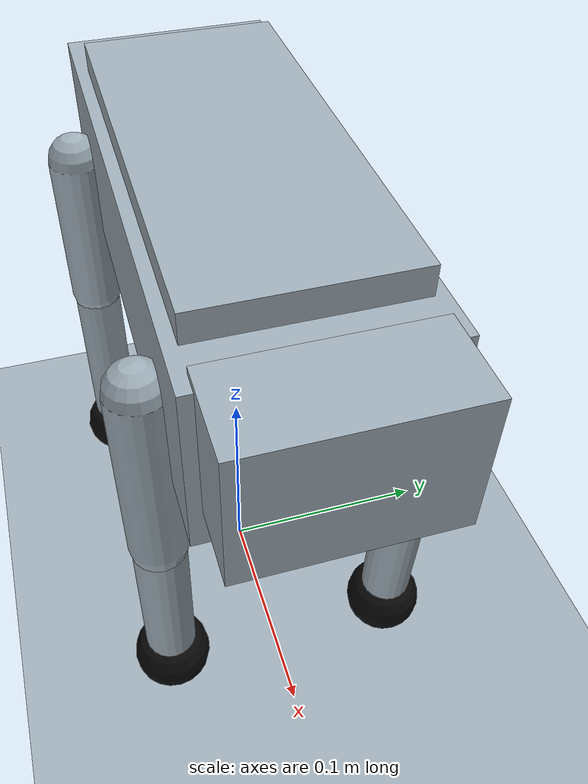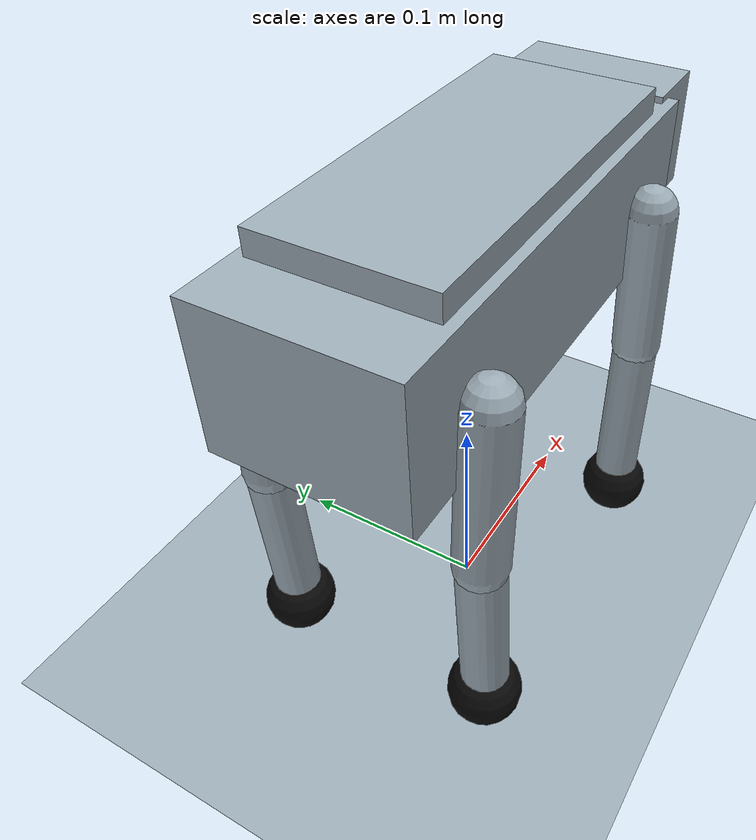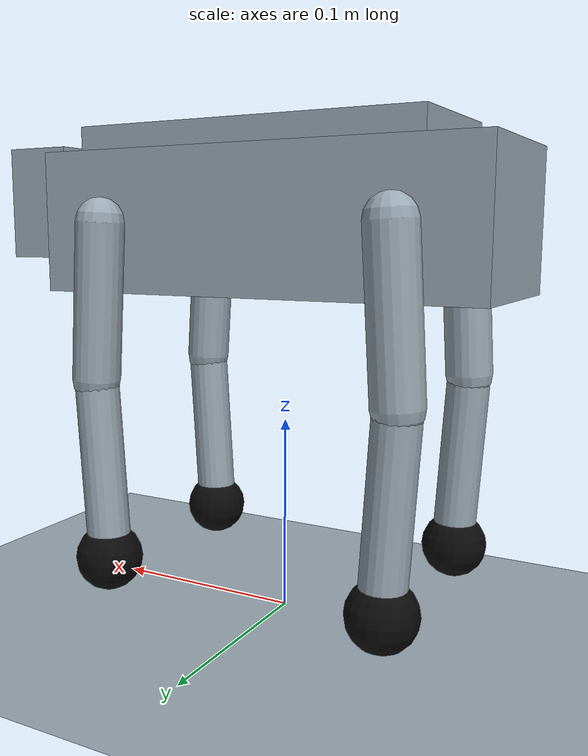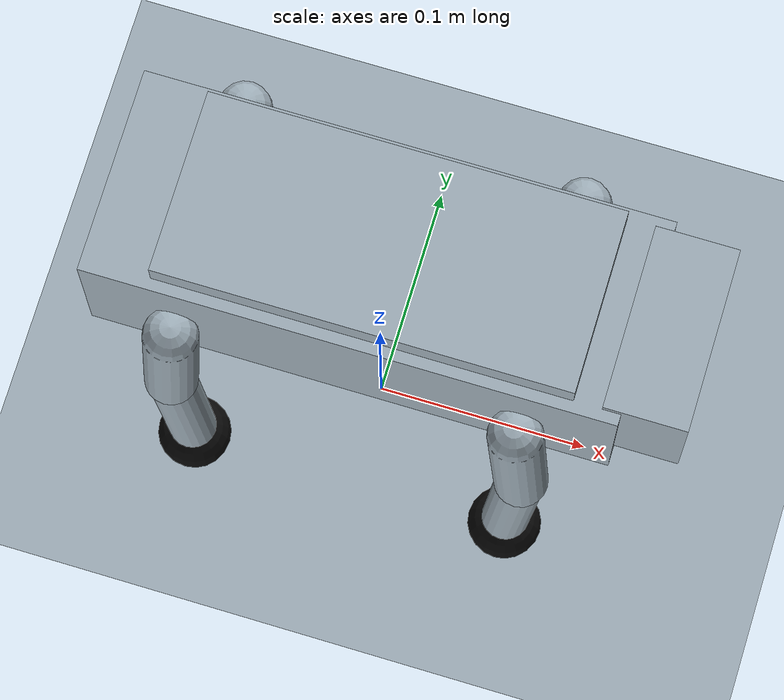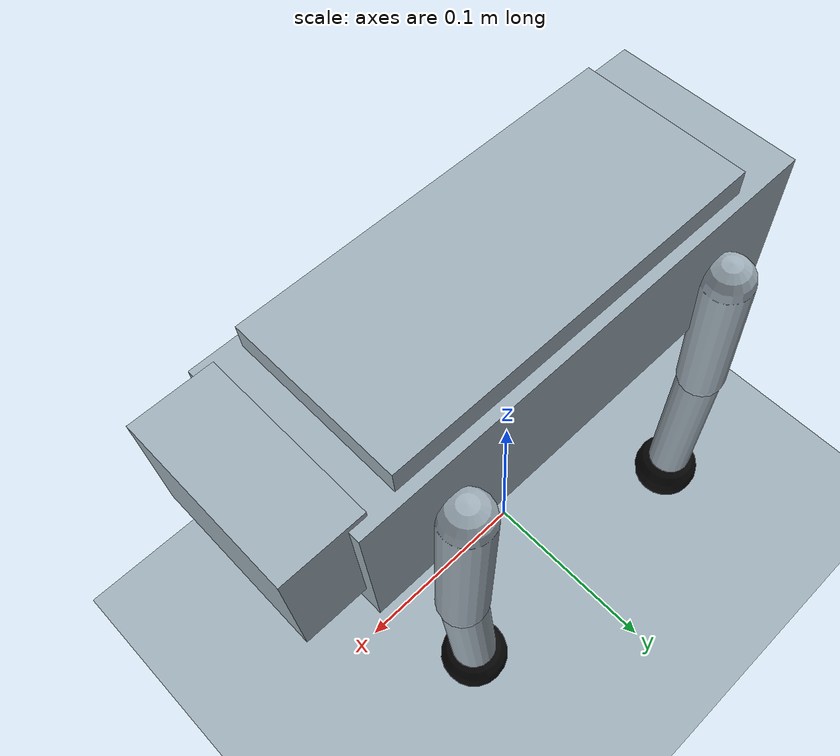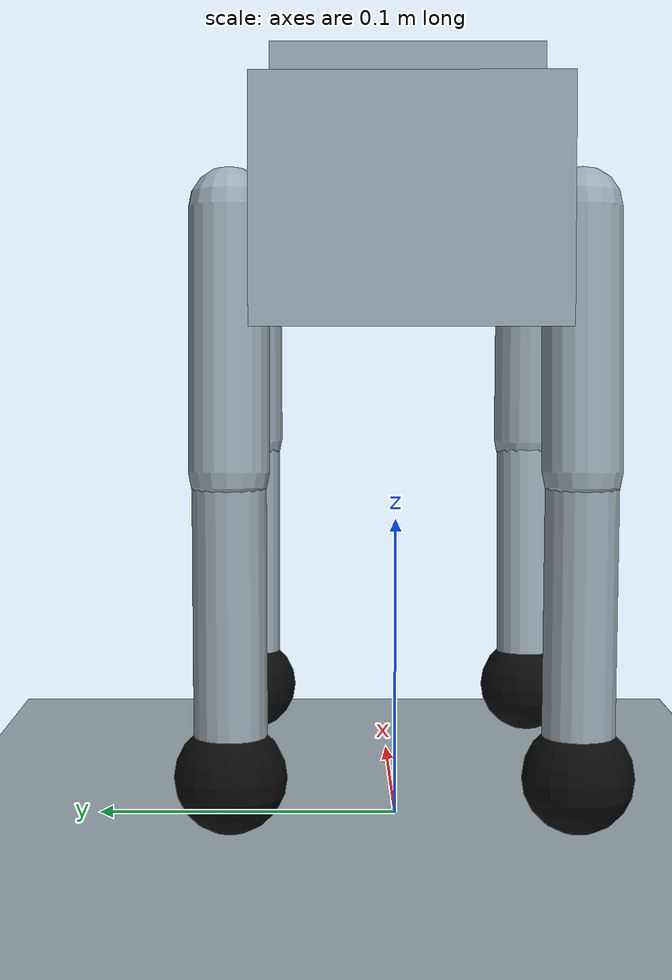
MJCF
<mujoco model="bittle_like_v0">
  <compiler angle="radian" coordinate="local"/>

  <option timestep="0.002" gravity="0 0 -9.81" integrator="RK4"/>

  <default>
    <joint damping="0.18" armature="0.008" limited="true"/>
    <geom friction="1.1 0.08 0.01" rgba="0.62 0.68 0.72 1"/>
    <position kp="12" ctrllimited="true" forcelimited="true" forcerange="-3.5 3.5"/>
  </default>

  <asset>
    <texture name="grid" type="2d" builtin="checker" width="512" height="512"
             rgb1="0.22 0.25 0.25" rgb2="0.36 0.4 0.4"/>
    <material name="grid" texture="grid" texrepeat="4 4"/>
    <material name="body_black" rgba="0.08 0.09 0.1 1"/>
    <material name="body_yellow" rgba="0.95 0.7 0.12 1"/>
    <material name="leg_dark" rgba="0.12 0.12 0.13 1"/>
  </asset>

  <worldbody>
    <light pos="0 0 2" dir="0 0 -1"/>
    <geom name="floor" type="plane" size="5 5 0.05" material="grid"/>

    <body name="torso" pos="0 0 0.20">
      <freejoint name="root"/>
      <geom name="torso_geom" type="box" size="0.115 0.045 0.035" mass="0.34" material="body_black"/>
      <geom name="top_shell" type="box" pos="0.005 0 0.035" size="0.09 0.04 0.012" mass="0.08" material="body_yellow"/>
      <geom name="front_face" type="box" pos="0.125 0 0.01" size="0.018 0.04 0.028" mass="0.03" material="body_yellow"/>

      <body name="front_left_thigh" pos="0.075 0.052 0">
        <joint name="front_left_hip" type="hinge" axis="0 1 0" range="-0.85 0.85"/>
        <geom type="capsule" fromto="0 0 0 0.005 0 -0.078" size="0.012" mass="0.026" material="leg_dark"/>
        <body name="front_left_calf" pos="0.005 0 -0.078">
          <joint name="front_left_knee" type="hinge" axis="0 1 0" range="-1.35 0.15"/>
          <geom type="capsule" fromto="0 0 0 -0.005 0 -0.082" size="0.011" mass="0.022" material="leg_dark"/>
          <geom name="front_left_foot" type="sphere" pos="-0.005 0 -0.092" size="0.017" mass="0.018" rgba="0.04 0.04 0.04 1"/>
        </body>
      </body>

      <body name="front_right_thigh" pos="0.075 -0.052 0">
        <joint name="front_right_hip" type="hinge" axis="0 1 0" range="-0.85 0.85"/>
        <geom type="capsule" fromto="0 0 0 0.005 0 -0.078" size="0.012" mass="0.026" material="leg_dark"/>
        <body name="front_right_calf" pos="0.005 0 -0.078">
          <joint name="front_right_knee" type="hinge" axis="0 1 0" range="-1.35 0.15"/>
          <geom type="capsule" fromto="0 0 0 -0.005 0 -0.082" size="0.011" mass="0.022" material="leg_dark"/>
          <geom name="front_right_foot" type="sphere" pos="-0.005 0 -0.092" size="0.017" mass="0.018" rgba="0.04 0.04 0.04 1"/>
        </body>
      </body>

      <body name="rear_left_thigh" pos="-0.075 0.052 0">
        <joint name="rear_left_hip" type="hinge" axis="0 1 0" range="-0.85 0.85"/>
        <geom type="capsule" fromto="0 0 0 -0.005 0 -0.078" size="0.012" mass="0.026" material="leg_dark"/>
        <body name="rear_left_calf" pos="-0.005 0 -0.078">
          <joint name="rear_left_knee" type="hinge" axis="0 1 0" range="-1.35 0.15"/>
          <geom type="capsule" fromto="0 0 0 0.005 0 -0.082" size="0.011" mass="0.022" material="leg_dark"/>
          <geom name="rear_left_foot" type="sphere" pos="0.005 0 -0.092" size="0.017" mass="0.018" rgba="0.04 0.04 0.04 1"/>
        </body>
      </body>

      <body name="rear_right_thigh" pos="-0.075 -0.052 0">
        <joint name="rear_right_hip" type="hinge" axis="0 1 0" range="-0.85 0.85"/>
        <geom type="capsule" fromto="0 0 0 -0.005 0 -0.078" size="0.012" mass="0.026" material="leg_dark"/>
        <body name="rear_right_calf" pos="-0.005 0 -0.078">
          <joint name="rear_right_knee" type="hinge" axis="0 1 0" range="-1.35 0.15"/>
          <geom type="capsule" fromto="0 0 0 0.005 0 -0.082" size="0.011" mass="0.022" material="leg_dark"/>
          <geom name="rear_right_foot" type="sphere" pos="0.005 0 -0.092" size="0.017" mass="0.018" rgba="0.04 0.04 0.04 1"/>
        </body>
      </body>
    </body>
  </worldbody>

  <actuator>
    <position name="front_left_hip_pos" joint="front_left_hip" ctrlrange="-0.75 0.75"/>
    <position name="front_left_knee_pos" joint="front_left_knee" ctrlrange="-1.25 0.05"/>
    <position name="front_right_hip_pos" joint="front_right_hip" ctrlrange="-0.75 0.75"/>
    <position name="front_right_knee_pos" joint="front_right_knee" ctrlrange="-1.25 0.05"/>
    <position name="rear_left_hip_pos" joint="rear_left_hip" ctrlrange="-0.75 0.75"/>
    <position name="rear_left_knee_pos" joint="rear_left_knee" ctrlrange="-1.25 0.05"/>
    <position name="rear_right_hip_pos" joint="rear_right_hip" ctrlrange="-0.75 0.75"/>
    <position name="rear_right_knee_pos" joint="rear_right_knee" ctrlrange="-1.25 0.05"/>
  </actuator>
</mujoco>
